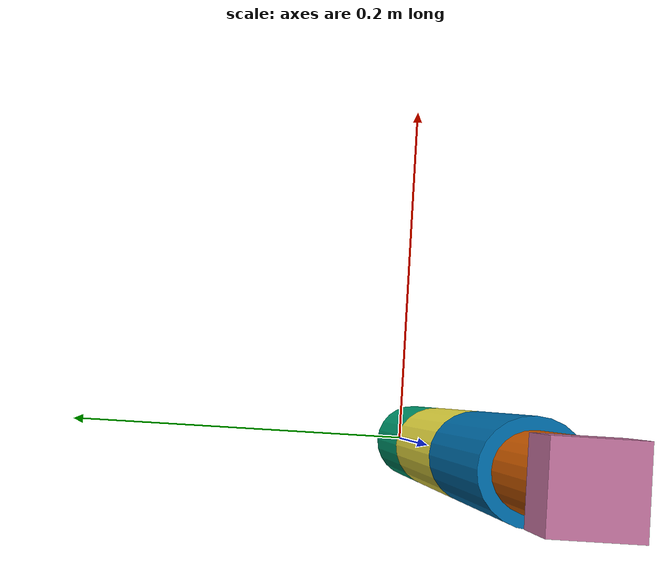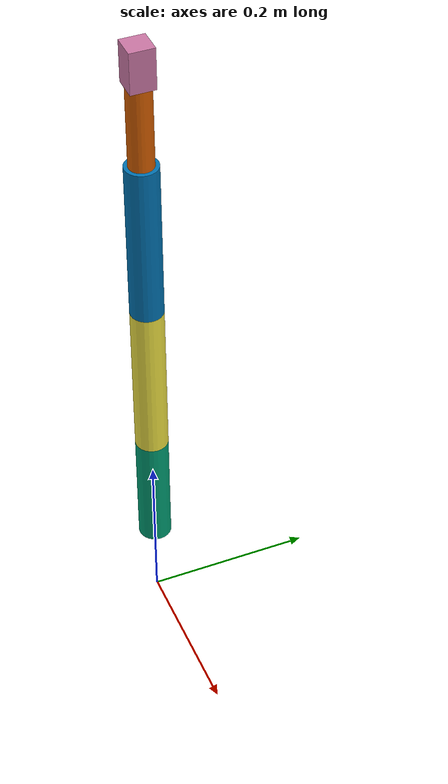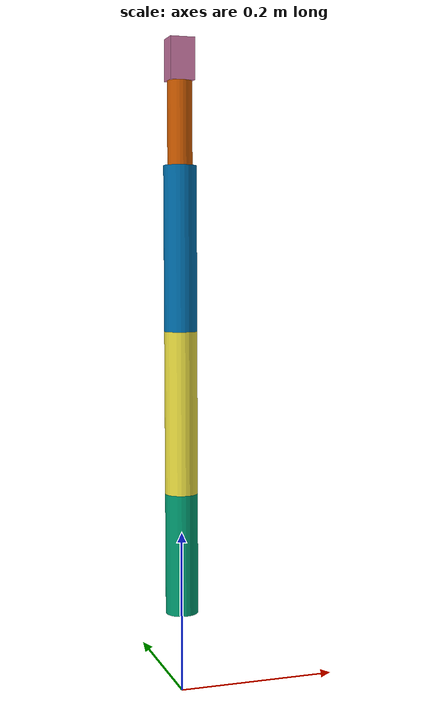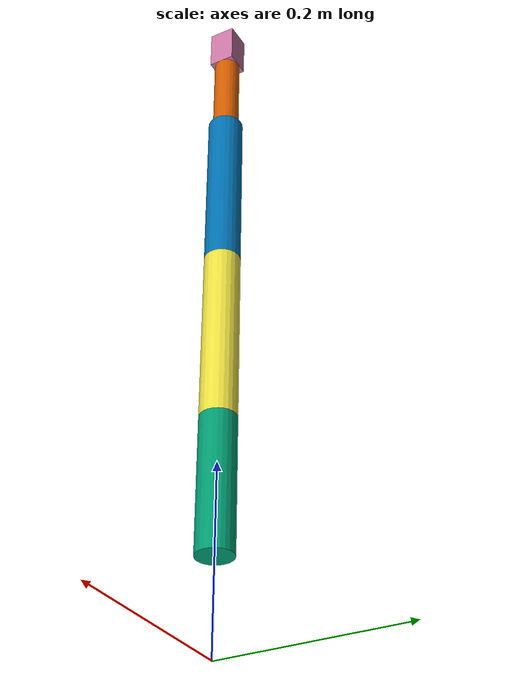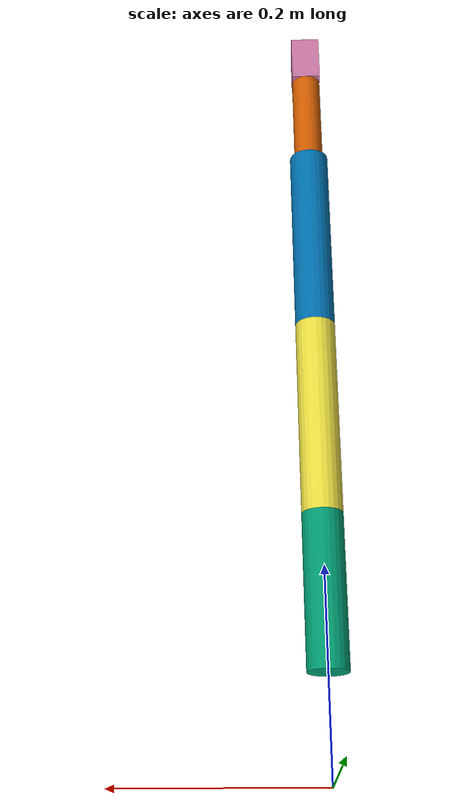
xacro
<?xml version="1.0"?>
<robot name="talos_arm" xmlns:xacro="http://www.ros.org/wiki/xacro">

  <link name="base_link"/>

  <link name="arm_base_link"/>

  <joint name="mount_joint" type="fixed">
    <parent link="base_link"/>
    <child link="arm_base_link"/>
    <origin xyz="0.0 0.0 0.10" rpy="0 0 0"/>
  </joint>

  <!-- joint1 -->
  <link name="link1">
    <visual>
      <geometry><cylinder radius="0.02" length="0.15"/></geometry>
      <origin xyz="0 0 0.075" rpy="0 0 0"/>
    </visual>
  </link>
  <joint name="joint1" type="revolute">
    <parent link="arm_base_link"/>
    <child link="link1"/>
    <origin xyz="0 0 0" rpy="0 0 0"/>
    <axis xyz="0 0 1"/>
    <!-- PLACEHOLDER range, not yet hardware-confirmed — see arm_params.yaml -->
    <limit lower="-3.14159265" upper="3.14159265" effort="10" velocity="1.0"/>
  </joint>

  <!-- joint2 -->
  <link name="link2">
    <visual>
      <geometry><cylinder radius="0.02" length="0.20"/></geometry>
      <origin xyz="0 0 0.10" rpy="0 0 0"/>
    </visual>
  </link>
  <joint name="joint2" type="revolute">
    <parent link="link1"/>
    <child link="link2"/>
    <origin xyz="0 0 0.15" rpy="0 0 0"/>
    <axis xyz="0 1 0"/>
    <!-- PLACEHOLDER range, not yet hardware-confirmed — see arm_params.yaml.
         0..200 deg, NOT symmetric — 0 is one end of travel, not centered. -->
    <limit lower="0.0" upper="3.49065850" effort="10" velocity="1.0"/>
  </joint>

  <!-- joint3 -->
  <link name="link3">
    <visual>
      <geometry><cylinder radius="0.02" length="0.20"/></geometry>
      <origin xyz="0 0 0.10" rpy="0 0 0"/>
    </visual>
  </link>
  <joint name="joint3" type="revolute">
    <parent link="link2"/>
    <child link="link3"/>
    <origin xyz="0 0 0.20" rpy="0 0 0"/>
    <axis xyz="0 1 0"/>
    <!-- PLACEHOLDER range, not yet hardware-confirmed — see arm_params.yaml -->
    <limit lower="0.0" upper="3.14159265" effort="10" velocity="1.0"/>
  </joint>

  <!-- joint4 / wrist -->
  <link name="link4">
    <visual>
      <geometry><cylinder radius="0.015" length="0.10"/></geometry>
      <origin xyz="0 0 0.05" rpy="0 0 0"/>
    </visual>
  </link>
  <joint name="joint4" type="revolute">
    <parent link="link3"/>
    <child link="link4"/>
    <origin xyz="0 0 0.20" rpy="0 0 0"/>
    <axis xyz="0 1 0"/>
    <!-- PLACEHOLDER range — real hinge travel is ~25-30 deg per machine
         team, NOT yet precisely measured/confirmed. Using the upper end
         (30 deg) here; see arm_params.yaml. -->
    <limit lower="0.0" upper="0.5235987755982988" effort="10" velocity="1.0"/>
  </joint>

  <link name="gripper_link">
    <visual>
      <geometry><box size="0.03 0.03 0.05"/></geometry>
      <origin xyz="0 0 0.025" rpy="0 0 0"/>
    </visual>
  </link>
  <!-- Placeholder DOF — real mechanism TBD from machine team. Prismatic
       slide is just enough to exercise the joystick -> command -> tf path. -->
  <joint name="gripper_joint" type="prismatic">
    <parent link="link4"/>
    <child link="gripper_link"/>
    <origin xyz="0 0 0.10" rpy="0 0 0"/>
    <axis xyz="1 0 0"/>
    <limit lower="0.0" upper="0.02" effort="5" velocity="0.05"/>
  </joint>

</robot>
